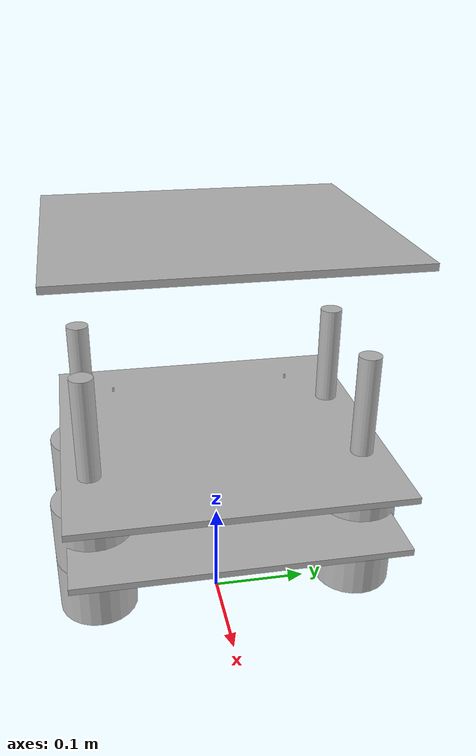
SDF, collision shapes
<?xml version="1.0" ?>
<sdf version="1.5">
  <model name="turtlebot">
    <link name="rack">
      <inertial>
        <pose>0.001453 -0.000453 0.029787 0 0 0</pose>
        <inertia>
          <ixx>0.058640</ixx>
          <ixy>0.000124</ixy>
          <ixz>0.000615</ixz>
          <iyy>0.058786</iyy>
          <iyz>0.000014</iyz>
          <izz>1.532440</izz>
        </inertia>
        <mass>2.234000</mass>
      </inertial>
      <collision name="plate_0_collision">
        <pose>-0.043340 0 0.084757 0 0 0</pose>
        <geometry>
          <box>
            <size>0.233502 0.314845 0.006401</size>
          </box>
        </geometry>
      </collision>
      <visual name="plate_0_visual">
        <pose>-0.043340 0 0.084757 0 0 0</pose>
        <geometry>
          <mesh>
            <uri>model://turtlebot/meshes/plate_0_logo.dae</uri>
          </mesh>
        </geometry>
      </visual>
      <collision name="plate_1_collision">
        <pose>-0.002660 0 0.141907 0 0 0</pose>
        <geometry>
          <box>
            <size>0.314856 0.314856 0.006401</size>
          </box>
        </geometry>
      </collision>
      <visual name="plate_1_visual">
        <pose>-0.002660 0 0.141907 0 0 0</pose>
        <geometry>
          <mesh>
            <uri>model://turtlebot/meshes/plate_1_logo.dae</uri>
          </mesh>
        </geometry>
      </visual>
      <collision name="plate_2_collision">
        <pose>-0.002660 0 0.199108 0 0 0</pose>
        <geometry>
          <box>
            <size>0.314856 0.314856 0.006401</size>
          </box>
        </geometry>
      </collision>
      <visual name="plate_2_visual">
        <pose>-0.002660 0 0.199108 0 0 0</pose>
        <geometry>
          <mesh>
            <uri>model://turtlebot/meshes/plate_1_logo.dae</uri>
          </mesh>
        </geometry>
      </visual>
      <collision name="plate_3_collision">
        <pose>-0.015820 0 0.405457 0 0 0</pose>
        <geometry>
          <box>
            <size>0.288000 0.315000 0.006401</size>
          </box>
        </geometry>
      </collision>
      <visual name="plate_3_visual">
        <pose>-0.015820 0 0.405457 0 0 0</pose>
        <geometry>
          <mesh>
            <uri>model://turtlebot/meshes/plate_2_logo.dae</uri>
          </mesh>
        </geometry>
      </visual>
      <collision name="spacer_0_collision">
        <pose>-0.002540 0.111468 0.079992 0 0 0</pose>
        <geometry>
          <cylinder>
            <radius>0.012700</radius>
            <length>0.003175</length>
          </cylinder>
        </geometry>
      </collision>
      <visual name="spacer_0_visual">
        <pose>-0.002540 0.111468 0.079992 0 0 0</pose>
        <geometry>
          <mesh>
            <uri>model://turtlebot/meshes/68-02403-125_Spacer.dae</uri>
          </mesh>
        </geometry>
      </visual>
      <collision name="spacer_1_collision">
        <pose>-0.002540 -0.111468 0.079992 0 0 0</pose>
        <geometry>
          <cylinder>
            <radius>0.012700</radius>
            <length>0.003175</length>
          </cylinder>
        </geometry>
      </collision>
      <visual name="spacer_1_visual">
        <pose>-0.002540 -0.111468 0.079992 0 0 0</pose>
        <geometry>
          <mesh>
            <uri>model://turtlebot/meshes/68-02403-125_Spacer.dae</uri>
          </mesh>
        </geometry>
      </visual>
      <collision name="spacer_2_collision">
        <pose>-0.072390 -0.111468 0.079992 0 0 0</pose>
        <geometry>
          <cylinder>
            <radius>0.012700</radius>
            <length>0.003175</length>
          </cylinder>
        </geometry>
      </collision>
      <visual name="spacer_2_visual">
        <pose>-0.072390 -0.111468 0.079992 0 0 0</pose>
        <geometry>
          <mesh>
            <uri>model://turtlebot/meshes/68-02403-125_Spacer.dae</uri>
          </mesh>
        </geometry>
      </visual>
      <collision name="spacer_3_collision">
        <pose>-0.072390 0.111468 0.079992 0 0 0</pose>
        <geometry>
          <cylinder>
            <radius>0.012700</radius>
            <length>0.003175</length>
          </cylinder>
        </geometry>
      </collision>
      <visual name="spacer_3_visual">
        <pose>-0.072390 0.111468 0.079992 0 0 0</pose>
        <geometry>
          <mesh>
            <uri>model://turtlebot/meshes/68-02403-125_Spacer.dae</uri>
          </mesh>
        </geometry>
      </visual>
      <collision name="standoff_2in_0_collision">
        <pose>0.067640 0.131420 0.087980 0 0 0</pose>
        <geometry>
          <cylinder>
            <radius>0.038100</radius>
            <length>0.063500</length>
          </cylinder>
        </geometry>
      </collision>
      <visual name="standoff_2in_0_visual">
        <pose>0.067640 0.131420 0.087980 0 0 0</pose>
        <geometry>
          <mesh>
            <uri>model://turtlebot/meshes/68-04552-2000-RA_Turtlebot_M-F_Standoff.dae</uri>
          </mesh>
        </geometry>
      </visual>
      <collision name="standoff_2in_1_collision">
        <pose>0.067640 -0.131420 0.087980 0 0 0</pose>
        <geometry>
          <cylinder>
            <radius>0.038100</radius>
            <length>0.063500</length>
          </cylinder>
        </geometry>
      </collision>
      <visual name="standoff_2in_1_visual">
        <pose>0.067640 -0.131420 0.087980 0 0 0</pose>
        <geometry>
          <mesh>
            <uri>model://turtlebot/meshes/68-04552-2000-RA_Turtlebot_M-F_Standoff.dae</uri>
          </mesh>
        </geometry>
      </visual>
      <collision name="standoff_2in_2_collision">
        <pose>-0.052832 -0.131420 0.087980 0 0 0</pose>
        <geometry>
          <cylinder>
            <radius>0.038100</radius>
            <length>0.063500</length>
          </cylinder>
        </geometry>
      </collision>
      <visual name="standoff_2in_2_visual">
        <pose>-0.052832 -0.131420 0.087980 0 0 0</pose>
        <geometry>
          <mesh>
            <uri>model://turtlebot/meshes/68-04552-2000-RA_Turtlebot_M-F_Standoff.dae</uri>
          </mesh>
        </geometry>
      </visual>
      <collision name="standoff_2in_3_collision">
        <pose>-0.052832 0.131420 0.087980 0 0 0</pose>
        <geometry>
          <cylinder>
            <radius>0.038100</radius>
            <length>0.063500</length>
          </cylinder>
        </geometry>
      </collision>
      <visual name="standoff_2in_3_visual">
        <pose>-0.052832 0.131420 0.087980 0 0 0</pose>
        <geometry>
          <mesh>
            <uri>model://turtlebot/meshes/68-04552-2000-RA_Turtlebot_M-F_Standoff.dae</uri>
          </mesh>
        </geometry>
      </visual>
      <collision name="standoff_2in_4_collision">
        <pose>0.067640 0.131420 0.145130 0 0 0</pose>
        <geometry>
          <cylinder>
            <radius>0.038100</radius>
            <length>0.063500</length>
          </cylinder>
        </geometry>
      </collision>
      <visual name="standoff_2in_4_visual">
        <pose>0.067640 0.131420 0.145130 0 0 0</pose>
        <geometry>
          <mesh>
            <uri>model://turtlebot/meshes/68-04552-2000-RA_Turtlebot_M-F_Standoff.dae</uri>
          </mesh>
        </geometry>
      </visual>
      <collision name="standoff_2in_5_collision">
        <pose>0.067640 -0.131420 0.145130 0 0 0</pose>
        <geometry>
          <cylinder>
            <radius>0.038100</radius>
            <length>0.063500</length>
          </cylinder>
        </geometry>
      </collision>
      <visual name="standoff_2in_5_visual">
        <pose>0.067640 -0.131420 0.145130 0 0 0</pose>
        <geometry>
          <mesh>
            <uri>model://turtlebot/meshes/68-04552-2000-RA_Turtlebot_M-F_Standoff.dae</uri>
          </mesh>
        </geometry>
      </visual>
      <collision name="standoff_2in_6_collision">
        <pose>-0.052832 -0.131420 0.145130 0 0 0</pose>
        <geometry>
          <cylinder>
            <radius>0.038100</radius>
            <length>0.063500</length>
          </cylinder>
        </geometry>
      </collision>
      <visual name="standoff_2in_6_visual">
        <pose>-0.052832 -0.131420 0.145130 0 0 0</pose>
        <geometry>
          <mesh>
            <uri>model://turtlebot/meshes/68-04552-2000-RA_Turtlebot_M-F_Standoff.dae</uri>
          </mesh>
        </geometry>
      </visual>
      <collision name="standoff_2in_7_collision">
        <pose>-0.052832 0.131420 0.145130 0 0 0</pose>
        <geometry>
          <cylinder>
            <radius>0.038100</radius>
            <length>0.063500</length>
          </cylinder>
        </geometry>
      </collision>
      <visual name="standoff_2in_7_visual">
        <pose>-0.052832 0.131420 0.145130 0 0 0</pose>
        <geometry>
          <mesh>
            <uri>model://turtlebot/meshes/68-04552-2000-RA_Turtlebot_M-F_Standoff.dae</uri>
          </mesh>
        </geometry>
      </visual>
      <collision name="standoff_8in_0_collision">
        <pose>0.067640 0.131420 0.202280 0 0 0</pose>
        <geometry>
          <cylinder>
            <radius>0.011113</radius>
            <length>0.203200</length>
          </cylinder>
        </geometry>
      </collision>
      <visual name="standoff_8in_0_visual">
        <pose>0.067640 0.131420 0.202280 0 0 0</pose>
        <geometry>
          <mesh>
            <uri>model://turtlebot/meshes/68-02421-8000-RA_Turtlebot_F-F_Standoff.dae</uri>
          </mesh>
        </geometry>
      </visual>
      <collision name="standoff_8in_1_collision">
        <pose>0.067640 -0.131420 0.202280 0 0 0</pose>
        <geometry>
          <cylinder>
            <radius>0.011113</radius>
            <length>0.203200</length>
          </cylinder>
        </geometry>
      </collision>
      <visual name="standoff_8in_1_visual">
        <pose>0.067640 -0.131420 0.202280 0 0 0</pose>
        <geometry>
          <mesh>
            <uri>model://turtlebot/meshes/68-02421-8000-RA_Turtlebot_F-F_Standoff.dae</uri>
          </mesh>
        </geometry>
      </visual>
      <collision name="standoff_8in_2_collision">
        <pose>-0.052832 -0.131420 0.202280 0 0 0</pose>
        <geometry>
          <cylinder>
            <radius>0.011113</radius>
            <length>0.203200</length>
          </cylinder>
        </geometry>
      </collision>
      <visual name="standoff_8in_2_visual">
        <pose>-0.052832 -0.131420 0.202280 0 0 0</pose>
        <geometry>
          <mesh>
            <uri>model://turtlebot/meshes/68-02421-8000-RA_Turtlebot_F-F_Standoff.dae</uri>
          </mesh>
        </geometry>
      </visual>
      <collision name="standoff_8in_3_collision">
        <pose>-0.052832 0.131420 0.202280 0 0 0</pose>
        <geometry>
          <cylinder>
            <radius>0.011113</radius>
            <length>0.203200</length>
          </cylinder>
        </geometry>
      </collision>
      <visual name="standoff_8in_3_visual">
        <pose>-0.052832 0.131420 0.202280 0 0 0</pose>
        <geometry>
          <mesh>
            <uri>model://turtlebot/meshes/68-02421-8000-RA_Turtlebot_F-F_Standoff.dae</uri>
          </mesh>
        </geometry>
      </visual>
      <collision name="standoff_kinect_0_collision">
        <pose>-0.105098 0.098000 0.202308 0 0 0</pose>
        <geometry>
          <cylinder>
            <radius>0.001111</radius>
            <length>0.008585</length>
          </cylinder>
        </geometry>
      </collision>
      <visual name="standoff_kinect_0_visual">
        <pose>-0.105098 0.098000 0.202308 0 0 0</pose>
        <geometry>
          <mesh>
            <uri>model://turtlebot/meshes/68-04556-RA_Kinect_Standoff_Assy.dae</uri>
          </mesh>
        </geometry>
      </visual>
      <collision name="standoff_kinect_1_collision">
        <pose>-0.105098 -0.098000 0.202308 0 0 0</pose>
        <geometry>
          <cylinder>
            <radius>0.001111</radius>
            <length>0.008585</length>
          </cylinder>
        </geometry>
      </collision>
      <visual name="standoff_kinect_1_visual">
        <pose>-0.105098 -0.098000 0.202308 0 0 0</pose>
        <geometry>
          <mesh>
            <uri>model://turtlebot/meshes/68-04556-RA_Kinect_Standoff_Assy.dae</uri>
          </mesh>
        </geometry>
      </visual>
    </link>
  </model>
</sdf>
